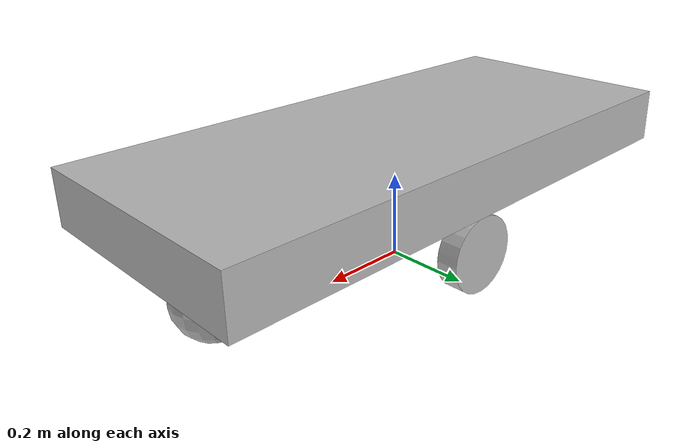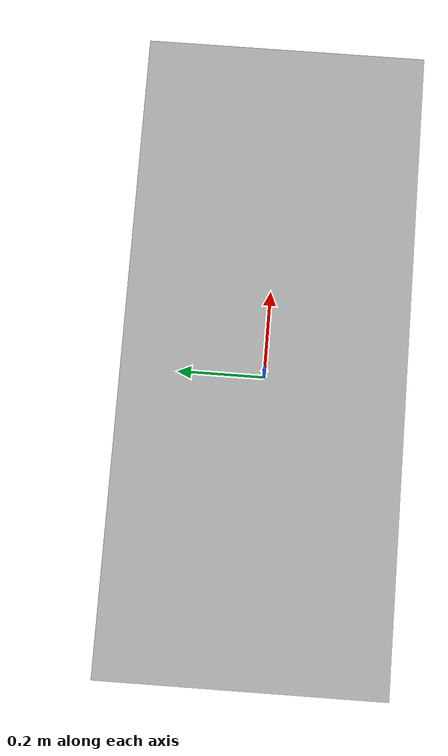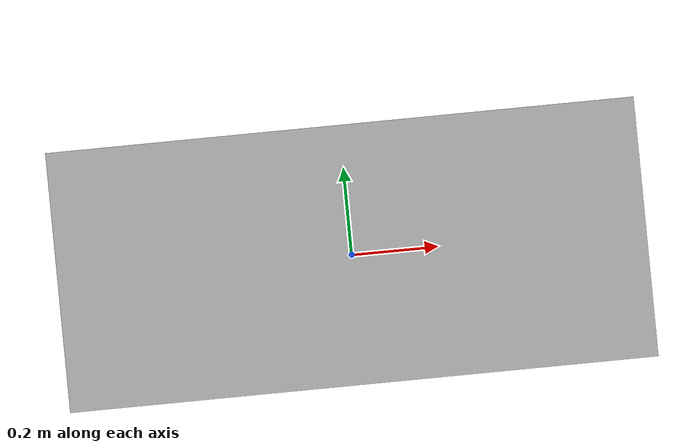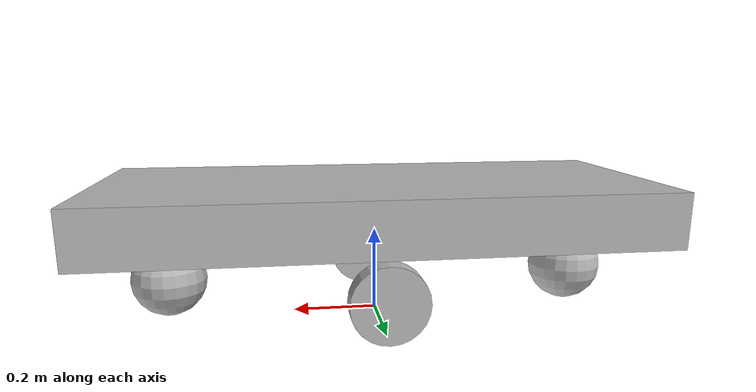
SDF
<?xml version='1.0'?>
<sdf version='1.4'>
  <model name="my_robot">
        <static>false</static>
<link name='chassis'>
            <pose>0 0 .26 0 0 0</pose>

            <collision name='collision'>
            <geometry>
            <box>
            <size>1.2954 .5715 .127</size>
            </box>
            </geometry>
            </collision>

            <visual name='visual'>
            <geometry>
            <box>
            <size>1.2954 .5715 .127</size>
            </box>
            </geometry>
            </visual>
<?Wheel 1_Front?>
 	    <collision name='caster_collision'>
            <pose>-.4953 0 -.1651 0 0 0</pose>
            <geometry>
            <sphere>
            <radius>.0889</radius>
            </sphere>
            </geometry>

            <surface>
            <friction>
            <ode>
            <mu>0</mu>
            <mu2>0</mu2>
            <slip1>1.0</slip1>
            <slip2>1.0</slip2>
            </ode>
            </friction>
            </surface>
            </collision>

            <visual name='caster_visual'>
            <pose>-.4953 0 -.1651 0 0 0</pose>
            <geometry>
            <sphere>
            <radius>.0889</radius>
            </sphere>
            </geometry>
            </visual>

<?Wheel 2_ Back ?>

	    <collision name='caster_collision'>
            <pose>.4953 0 -.1651 0 0 0</pose>
            <geometry>
            <sphere>
            <radius>.0889</radius>
            </sphere>
            </geometry>

            <surface>
            <friction>
            <ode>
            <mu>0</mu>
            <mu2>0</mu2>
            <slip1>1.0</slip1>
            <slip2>1.0</slip2>
            </ode>
            </friction>
            </surface>
            </collision>

            <visual name='caster_visual2'>
            <pose>.4953 0 -.1651 0 0 0</pose>
            <geometry>
            <sphere>
            <radius>.0889</radius>
            </sphere>
            </geometry>
            </visual>

          </link>

<?Wheel 3_ Middle ?>

	   <link name="left_wheel">
           <pose>0.0 0.23495 0.0889 0 1.5707 1.5707</pose>
           <collision name="collision">
           <geometry>
           <cylinder>
           <radius>.0889</radius>
           <length>.0508</length>
           </cylinder>
           </geometry>
           </collision>
           <visual name="visual">
           <geometry>
           <cylinder>
           <radius>.0889</radius>
           <length>.0508</length>
           </cylinder>
           </geometry>
           </visual>
           </link>

<?Wheel 4_ Middle ?>

	   <link name="right_wheel">
           <pose>0.0 -0.23495 0.0889 0 1.5707 1.5707</pose>
           <collision name="collision">
           <geometry>
           <cylinder>
           <radius>.0889</radius>
           <length>.0508</length>
           </cylinder>
           </geometry>
           </collision>
           <visual name="visual">
           <geometry>
           <cylinder>
           <radius>.0889</radius>
           <length>.0508</length>
           </cylinder>
           </geometry>
           </visual>
           </link>

<?Adding the wheel joints?>

           <joint type="revolute" name="left_wheel_hinge">
           <pose>0 0 -0.03 0 0 0</pose>
           <child>left_wheel</child>
           <parent>chassis</parent>
           <axis>
           <xyz>0 1 0</xyz>
           </axis>
           </joint>

           <joint type="revolute" name="right_wheel_hinge">
           <pose>0 0 0.03 0 0 0</pose>
           <child>right_wheel</child>
           <parent>chassis</parent>
           <axis>
           <xyz>0 1 0</xyz>
           </axis>
           </joint>

  </model>
</sdf>
